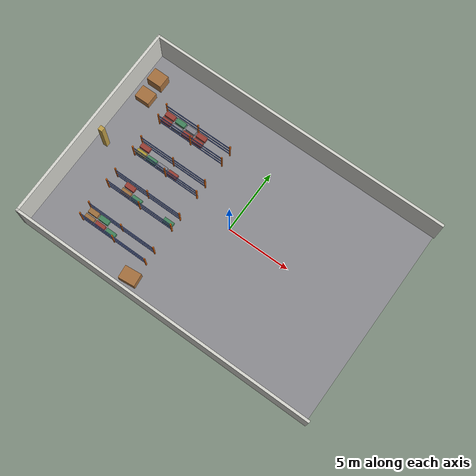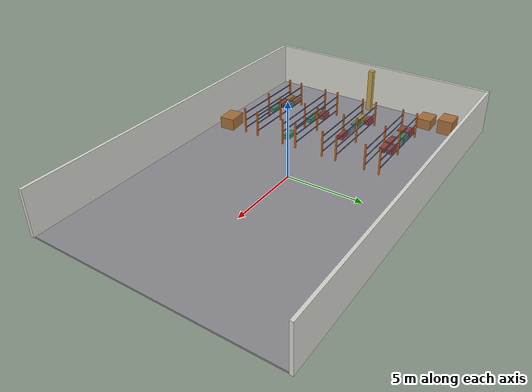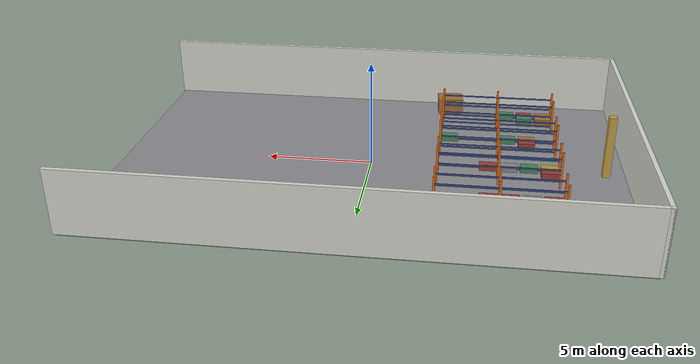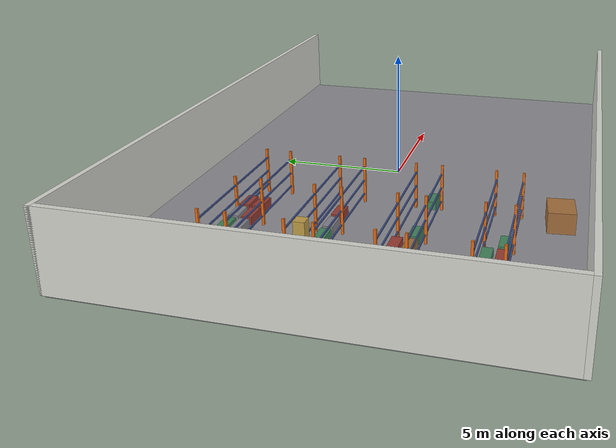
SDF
<sdf version="1.10">
 <world name="warehouse">
  <model name="warehouse_building">
   <static>true</static>
   <link name="floor">
    <pose>0 0 -0.05 0 0 0</pose>
    <collision name="collision">
     <geometry><box><size>24 16 0.1</size></box></geometry>
     <surface><friction><ode><mu>1.0</mu><mu2>1.0</mu2></ode></friction></surface>
    </collision>
    <visual name="visual">
     <geometry><box><size>24 16 0.1</size></box></geometry>
     <material>
      <ambient>0.45 0.45 0.47 1</ambient>
      <diffuse>0.55 0.55 0.57 1</diffuse>
      <specular>0.1 0.1 0.1 1</specular>
     </material>
    </visual>
   </link>
   <link name="wall_north">
    <pose>0 8 1.5 0 0 0</pose>
    <collision name="collision"><geometry><box><size>24.2 0.2 3</size></box></geometry></collision>
    <visual name="visual">
     <geometry><box><size>24.2 0.2 3</size></box></geometry>
     <material><ambient>0.7 0.7 0.68 1</ambient><diffuse>0.85 0.85 0.82 1</diffuse></material>
    </visual>
   </link>
   <link name="wall_south">
    <pose>0 -8 1.5 0 0 0</pose>
    <collision name="collision"><geometry><box><size>24.2 0.2 3</size></box></geometry></collision>
    <visual name="visual">
     <geometry><box><size>24.2 0.2 3</size></box></geometry>
     <material><ambient>0.7 0.7 0.68 1</ambient><diffuse>0.85 0.85 0.82 1</diffuse></material>
    </visual>
   </link>
   <link name="wall_west">
    <pose>-12 0 1.5 0 0 0</pose>
    <collision name="collision"><geometry><box><size>0.2 16.2 3</size></box></geometry></collision>
    <visual name="visual">
     <geometry><box><size>0.2 16.2 3</size></box></geometry>
     <material><ambient>0.7 0.7 0.68 1</ambient><diffuse>0.85 0.85 0.82 1</diffuse></material>
    </visual>
   </link>
   <link name="rack_r0_b0">
    <pose>-6 -5 1.25 0 0 0</pose>
    <collision name="upright_n0_collision">
     <pose>-2.796 0.495 -0.350 0 0 0</pose>
     <geometry><box><size>0.09 0.09 1.8</size></box></geometry>
    </collision>
    <visual name="upright_n0_visual">
     <pose>-2.796 0.495 -0.350 0 0 0</pose>
     <geometry><box><size>0.09 0.09 1.8</size></box></geometry>
     <material><ambient>0.55 0.25 0.05 1</ambient><diffuse>0.90 0.42 0.08 1</diffuse></material>
    </visual>
    <collision name="upright_n1_collision">
     <pose>0 0.495 -0.350 0 0 0</pose>
     <geometry><box><size>0.09 0.09 1.8</size></box></geometry>
    </collision>
    <visual name="upright_n1_visual">
     <pose>0 0.495 -0.350 0 0 0</pose>
     <geometry><box><size>0.09 0.09 1.8</size></box></geometry>
     <material><ambient>0.55 0.25 0.05 1</ambient><diffuse>0.90 0.42 0.08 1</diffuse></material>
    </visual>
    <collision name="upright_n2_collision">
     <pose>2.796 0.495 -0.350 0 0 0</pose>
     <geometry><box><size>0.09 0.09 1.8</size></box></geometry>
    </collision>
    <visual name="upright_n2_visual">
     <pose>2.796 0.495 -0.350 0 0 0</pose>
     <geometry><box><size>0.09 0.09 1.8</size></box></geometry>
     <material><ambient>0.55 0.25 0.05 1</ambient><diffuse>0.90 0.42 0.08 1</diffuse></material>
    </visual>
    <collision name="beam_n0_l0_collision">
     <pose>-1.398 0.475 -0.900 0 0 0</pose>
     <geometry><box><size>2.706 0.05 0.06</size></box></geometry>
    </collision>
    <visual name="beam_n0_l0_visual">
     <pose>-1.398 0.475 -0.900 0 0 0</pose>
     <geometry><box><size>2.706 0.05 0.06</size></box></geometry>
     <material><ambient>0.15 0.18 0.30 1</ambient><diffuse>0.25 0.32 0.55 1</diffuse></material>
    </visual>
    <collision name="beam_n0_l1_collision">
     <pose>-1.398 0.475 -0.350 0 0 0</pose>
     <geometry><box><size>2.706 0.05 0.06</size></box></geometry>
    </collision>
    <visual name="beam_n0_l1_visual">
     <pose>-1.398 0.475 -0.350 0 0 0</pose>
     <geometry><box><size>2.706 0.05 0.06</size></box></geometry>
     <material><ambient>0.15 0.18 0.30 1</ambient><diffuse>0.25 0.32 0.55 1</diffuse></material>
    </visual>
    <collision name="beam_n0_l2_collision">
     <pose>-1.398 0.475 0.200 0 0 0</pose>
     <geometry><box><size>2.706 0.05 0.06</size></box></geometry>
    </collision>
    <visual name="beam_n0_l2_visual">
     <pose>-1.398 0.475 0.200 0 0 0</pose>
     <geometry><box><size>2.706 0.05 0.06</size></box></geometry>
     <material><ambient>0.15 0.18 0.30 1</ambient><diffuse>0.25 0.32 0.55 1</diffuse></material>
    </visual>
    <collision name="beam_n1_l0_collision">
     <pose>1.398 0.475 -0.900 0 0 0</pose>
     <geometry><box><size>2.706 0.05 0.06</size></box></geometry>
    </collision>
    <visual name="beam_n1_l0_visual">
     <pose>1.398 0.475 -0.900 0 0 0</pose>
     <geometry><box><size>2.706 0.05 0.06</size></box></geometry>
     <material><ambient>0.15 0.18 0.30 1</ambient><diffuse>0.25 0.32 0.55 1</diffuse></material>
    </visual>
    <collision name="beam_n1_l1_collision">
     <pose>1.398 0.475 -0.350 0 0 0</pose>
     <geometry><box><size>2.706 0.05 0.06</size></box></geometry>
    </collision>
    <visual name="beam_n1_l1_visual">
     <pose>1.398 0.475 -0.350 0 0 0</pose>
     <geometry><box><size>2.706 0.05 0.06</size></box></geometry>
     <material><ambient>0.15 0.18 0.30 1</ambient><diffuse>0.25 0.32 0.55 1</diffuse></material>
    </visual>
    <collision name="beam_n1_l2_collision">
     <pose>1.398 0.475 0.200 0 0 0</pose>
     <geometry><box><size>2.706 0.05 0.06</size></box></geometry>
    </collision>
    <visual name="beam_n1_l2_visual">
     <pose>1.398 0.475 0.200 0 0 0</pose>
     <geometry><box><size>2.706 0.05 0.06</size></box></geometry>
     <material><ambient>0.15 0.18 0.30 1</ambient><diffuse>0.25 0.32 0.55 1</diffuse></material>
    </visual>
    <collision name="item_n0_l0_s0_collision">
     <pose>-2.33 0.250 -0.720 0 0 0</pose>
     <geometry><box><size>0.8 0.38 0.3</size></box></geometry>
    </collision>
    <visual name="item_n0_l0_s0_visual">
     <pose>-2.33 0.250 -0.720 0 0 0</pose>
     <geometry><box><size>0.8 0.38 0.3</size></box></geometry>
     <material><ambient>0.38 0.26 0.13 1</ambient><diffuse>0.62 0.44 0.24 1</diffuse></material>
    </visual>
    <collision name="item_n0_l0_s1_collision">
     <pose>-1.398 0.250 -0.720 0 0 0</pose>
     <geometry><box><size>0.8 0.38 0.3</size></box></geometry>
    </collision>
    <visual name="item_n0_l0_s1_visual">
     <pose>-1.398 0.250 -0.720 0 0 0</pose>
     <geometry><box><size>0.8 0.38 0.3</size></box></geometry>
     <material><ambient>0.14 0.28 0.20 1</ambient><diffuse>0.26 0.52 0.36 1</diffuse></material>
    </visual>
    <collision name="upright_s0_collision">
     <pose>-2.796 -0.495 -0.350 0 0 0</pose>
     <geometry><box><size>0.09 0.09 1.8</size></box></geometry>
    </collision>
    <visual name="upright_s0_visual">
     <pose>-2.796 -0.495 -0.350 0 0 0</pose>
     <geometry><box><size>0.09 0.09 1.8</size></box></geometry>
     <material><ambient>0.55 0.25 0.05 1</ambient><diffuse>0.90 0.42 0.08 1</diffuse></material>
    </visual>
    <collision name="upright_s1_collision">
     <pose>0 -0.495 -0.350 0 0 0</pose>
     <geometry><box><size>0.09 0.09 1.8</size></box></geometry>
    </collision>
    <visual name="upright_s1_visual">
     <pose>0 -0.495 -0.350 0 0 0</pose>
     <geometry><box><size>0.09 0.09 1.8</size></box></geometry>
     <material><ambient>0.55 0.25 0.05 1</ambient><diffuse>0.90 0.42 0.08 1</diffuse></material>
    </visual>
    <collision name="upright_s2_collision">
     <pose>2.796 -0.495 -0.350 0 0 0</pose>
     <geometry><box><size>0.09 0.09 1.8</size></box></geometry>
    </collision>
    <visual name="upright_s2_visual">
     <pose>2.796 -0.495 -0.350 0 0 0</pose>
     <geometry><box><size>0.09 0.09 1.8</size></box></geometry>
     <material><ambient>0.55 0.25 0.05 1</ambient><diffuse>0.90 0.42 0.08 1</diffuse></material>
    </visual>
    <collision name="beam_s0_l0_collision">
     <pose>-1.398 -0.475 -0.900 0 0 0</pose>
     <geometry><box><size>2.706 0.05 0.06</size></box></geometry>
    </collision>
    <visual name="beam_s0_l0_visual">
     <pose>-1.398 -0.475 -0.900 0 0 0</pose>
     <geometry><box><size>2.706 0.05 0.06</size></box></geometry>
     <material><ambient>0.15 0.18 0.30 1</ambient><diffuse>0.25 0.32 0.55 1</diffuse></material>
    </visual>
    <collision name="beam_s0_l1_collision">
     <pose>-1.398 -0.475 -0.350 0 0 0</pose>
     <geometry><box><size>2.706 0.05 0.06</size></box></geometry>
    </collision>
    <visual name="beam_s0_l1_visual">
     <pose>-1.398 -0.475 -0.350 0 0 0</pose>
     <geometry><box><size>2.706 0.05 0.06</size></box></geometry>
     <material><ambient>0.15 0.18 0.30 1</ambient><diffuse>0.25 0.32 0.55 1</diffuse></material>
    </visual>
    <collision name="beam_s0_l2_collision">
     <pose>-1.398 -0.475 0.200 0 0 0</pose>
     <geometry><box><size>2.706 0.05 0.06</size></box></geometry>
    </collision>
    <visual name="beam_s0_l2_visual">
     <pose>-1.398 -0.475 0.200 0 0 0</pose>
     <geometry><box><size>2.706 0.05 0.06</size></box></geometry>
     <material><ambient>0.15 0.18 0.30 1</ambient><diffuse>0.25 0.32 0.55 1</diffuse></material>
    </visual>
    <collision name="beam_s1_l0_collision">
     <pose>1.398 -0.475 -0.900 0 0 0</pose>
     <geometry><box><size>2.706 0.05 0.06</size></box></geometry>
    </collision>
    <visual name="beam_s1_l0_visual">
     <pose>1.398 -0.475 -0.900 0 0 0</pose>
     <geometry><box><size>2.706 0.05 0.06</size></box></geometry>
     <material><ambient>0.15 0.18 0.30 1</ambient><diffuse>0.25 0.32 0.55 1</diffuse></material>
    </visual>
    <collision name="beam_s1_l1_collision">
     <pose>1.398 -0.475 -0.350 0 0 0</pose>
     <geometry><box><size>2.706 0.05 0.06</size></box></geometry>
    </collision>
    <visual name="beam_s1_l1_visual">
     <pose>1.398 -0.475 -0.350 0 0 0</pose>
     <geometry><box><size>2.706 0.05 0.06</size></box></geometry>
     <material><ambient>0.15 0.18 0.30 1</ambient><diffuse>0.25 0.32 0.55 1</diffuse></material>
    </visual>
    <collision name="beam_s1_l2_collision">
     <pose>1.398 -0.475 0.200 0 0 0</pose>
     <geometry><box><size>2.706 0.05 0.06</size></box></geometry>
    </collision>
    <visual name="beam_s1_l2_visual">
     <pose>1.398 -0.475 0.200 0 0 0</pose>
     <geometry><box><size>2.706 0.05 0.06</size></box></geometry>
     <material><ambient>0.15 0.18 0.30 1</ambient><diffuse>0.25 0.32 0.55 1</diffuse></material>
    </visual>
    <collision name="item_s0_l0_s0_collision">
     <pose>-2.33 -0.250 -0.720 0 0 0</pose>
     <geometry><box><size>0.8 0.38 0.3</size></box></geometry>
    </collision>
    <visual name="item_s0_l0_s0_visual">
     <pose>-2.33 -0.250 -0.720 0 0 0</pose>
     <geometry><box><size>0.8 0.38 0.3</size></box></geometry>
     <material><ambient>0.38 0.26 0.13 1</ambient><diffuse>0.62 0.44 0.24 1</diffuse></material>
    </visual>
    <collision name="item_s0_l0_s2_collision">
     <pose>-0.466 -0.250 -0.720 0 0 0</pose>
     <geometry><box><size>0.8 0.38 0.3</size></box></geometry>
    </collision>
    <visual name="item_s0_l0_s2_visual">
     <pose>-0.466 -0.250 -0.720 0 0 0</pose>
     <geometry><box><size>0.8 0.38 0.3</size></box></geometry>
     <material><ambient>0.14 0.28 0.20 1</ambient><diffuse>0.26 0.52 0.36 1</diffuse></material>
    </visual>
    <collision name="item_s0_l0_s1_collision">
     <pose>-1.398 -0.250 -0.720 0 0 0</pose>
     <geometry><box><size>0.8 0.38 0.3</size></box></geometry>
    </collision>
    <visual name="item_s0_l0_s1_visual">
     <pose>-1.398 -0.250 -0.720 0 0 0</pose>
     <geometry><box><size>0.8 0.38 0.3</size></box></geometry>
     <material><ambient>0.30 0.12 0.12 1</ambient><diffuse>0.60 0.24 0.20 1</diffuse></material>
    </visual>
   </link>
   <link name="rack_r1_b0">
    <pose>-6 -2 1.25 0 0 0</pose>
    <collision name="upright_n0_collision">
     <pose>-2.796 0.495 -0.350 0 0 0</pose>
     <geometry><box><size>0.09 0.09 1.8</size></box></geometry>
    </collision>
    <visual name="upright_n0_visual">
     <pose>-2.796 0.495 -0.350 0 0 0</pose>
     <geometry><box><size>0.09 0.09 1.8</size></box></geometry>
     <material><ambient>0.55 0.25 0.05 1</ambient><diffuse>0.90 0.42 0.08 1</diffuse></material>
    </visual>
    <collision name="upright_n1_collision">
     <pose>0 0.495 -0.350 0 0 0</pose>
     <geometry><box><size>0.09 0.09 1.8</size></box></geometry>
    </collision>
    <visual name="upright_n1_visual">
     <pose>0 0.495 -0.350 0 0 0</pose>
     <geometry><box><size>0.09 0.09 1.8</size></box></geometry>
     <material><ambient>0.55 0.25 0.05 1</ambient><diffuse>0.90 0.42 0.08 1</diffuse></material>
    </visual>
    <collision name="upright_n2_collision">
     <pose>2.796 0.495 -0.350 0 0 0</pose>
     <geometry><box><size>0.09 0.09 1.8</size></box></geometry>
    </collision>
    <visual name="upright_n2_visual">
     <pose>2.796 0.495 -0.350 0 0 0</pose>
     <geometry><box><size>0.09 0.09 1.8</size></box></geometry>
     <material><ambient>0.55 0.25 0.05 1</ambient><diffuse>0.90 0.42 0.08 1</diffuse></material>
    </visual>
    <collision name="beam_n0_l0_collision">
     <pose>-1.398 0.475 -0.900 0 0 0</pose>
     <geometry><box><size>2.706 0.05 0.06</size></box></geometry>
    </collision>
    <visual name="beam_n0_l0_visual">
     <pose>-1.398 0.475 -0.900 0 0 0</pose>
     <geometry><box><size>2.706 0.05 0.06</size></box></geometry>
     <material><ambient>0.15 0.18 0.30 1</ambient><diffuse>0.25 0.32 0.55 1</diffuse></material>
    </visual>
    <collision name="beam_n0_l1_collision">
     <pose>-1.398 0.475 -0.350 0 0 0</pose>
     <geometry><box><size>2.706 0.05 0.06</size></box></geometry>
    </collision>
    <visual name="beam_n0_l1_visual">
     <pose>-1.398 0.475 -0.350 0 0 0</pose>
     <geometry><box><size>2.706 0.05 0.06</size></box></geometry>
     <material><ambient>0.15 0.18 0.30 1</ambient><diffuse>0.25 0.32 0.55 1</diffuse></material>
    </visual>
    <collision name="beam_n0_l2_collision">
     <pose>-1.398 0.475 0.200 0 0 0</pose>
     <geometry><box><size>2.706 0.05 0.06</size></box></geometry>
    </collision>
    <visual name="beam_n0_l2_visual">
     <pose>-1.398 0.475 0.200 0 0 0</pose>
     <geometry><box><size>2.706 0.05 0.06</size></box></geometry>
     <material><ambient>0.15 0.18 0.30 1</ambient><diffuse>0.25 0.32 0.55 1</diffuse></material>
    </visual>
    <collision name="beam_n1_l0_collision">
     <pose>1.398 0.475 -0.900 0 0 0</pose>
     <geometry><box><size>2.706 0.05 0.06</size></box></geometry>
    </collision>
    <visual name="beam_n1_l0_visual">
     <pose>1.398 0.475 -0.900 0 0 0</pose>
     <geometry><box><size>2.706 0.05 0.06</size></box></geometry>
     <material><ambient>0.15 0.18 0.30 1</ambient><diffuse>0.25 0.32 0.55 1</diffuse></material>
    </visual>
    <collision name="beam_n1_l1_collision">
     <pose>1.398 0.475 -0.350 0 0 0</pose>
     <geometry><box><size>2.706 0.05 0.06</size></box></geometry>
    </collision>
    <visual name="beam_n1_l1_visual">
     <pose>1.398 0.475 -0.350 0 0 0</pose>
     <geometry><box><size>2.706 0.05 0.06</size></box></geometry>
     <material><ambient>0.15 0.18 0.30 1</ambient><diffuse>0.25 0.32 0.55 1</diffuse></material>
    </visual>
    <collision name="beam_n1_l2_collision">
     <pose>1.398 0.475 0.200 0 0 0</pose>
     <geometry><box><size>2.706 0.05 0.06</size></box></geometry>
    </collision>
    <visual name="beam_n1_l2_visual">
     <pose>1.398 0.475 0.200 0 0 0</pose>
     <geometry><box><size>2.706 0.05 0.06</size></box></geometry>
     <material><ambient>0.15 0.18 0.30 1</ambient><diffuse>0.25 0.32 0.55 1</diffuse></material>
    </visual>
    <collision name="item_n0_l0_s1_collision">
     <pose>-1.398 0.250 -0.720 0 0 0</pose>
     <geometry><box><size>0.8 0.38 0.3</size></box></geometry>
    </collision>
    <visual name="item_n0_l0_s1_visual">
     <pose>-1.398 0.250 -0.720 0 0 0</pose>
     <geometry><box><size>0.8 0.38 0.3</size></box></geometry>
     <material><ambient>0.30 0.12 0.12 1</ambient><diffuse>0.60 0.24 0.20 1</diffuse></material>
    </visual>
    <collision name="upright_s0_collision">
     <pose>-2.796 -0.495 -0.350 0 0 0</pose>
     <geometry><box><size>0.09 0.09 1.8</size></box></geometry>
    </collision>
    <visual name="upright_s0_visual">
     <pose>-2.796 -0.495 -0.350 0 0 0</pose>
     <geometry><box><size>0.09 0.09 1.8</size></box></geometry>
     <material><ambient>0.55 0.25 0.05 1</ambient><diffuse>0.90 0.42 0.08 1</diffuse></material>
    </visual>
    <collision name="upright_s1_collision">
     <pose>0 -0.495 -0.350 0 0 0</pose>
     <geometry><box><size>0.09 0.09 1.8</size></box></geometry>
    </collision>
    <visual name="upright_s1_visual">
     <pose>0 -0.495 -0.350 0 0 0</pose>
     <geometry><box><size>0.09 0.09 1.8</size></box></geometry>
     <material><ambient>0.55 0.25 0.05 1</ambient><diffuse>0.90 0.42 0.08 1</diffuse></material>
    </visual>
    <collision name="upright_s2_collision">
     <pose>2.796 -0.495 -0.350 0 0 0</pose>
     <geometry><box><size>0.09 0.09 1.8</size></box></geometry>
    </collision>
    <visual name="upright_s2_visual">
     <pose>2.796 -0.495 -0.350 0 0 0</pose>
     <geometry><box><size>0.09 0.09 1.8</size></box></geometry>
     <material><ambient>0.55 0.25 0.05 1</ambient><diffuse>0.90 0.42 0.08 1</diffuse></material>
    </visual>
    <collision name="beam_s0_l0_collision">
     <pose>-1.398 -0.475 -0.900 0 0 0</pose>
     <geometry><box><size>2.706 0.05 0.06</size></box></geometry>
    </collision>
    <visual name="beam_s0_l0_visual">
     <pose>-1.398 -0.475 -0.900 0 0 0</pose>
     <geometry><box><size>2.706 0.05 0.06</size></box></geometry>
     <material><ambient>0.15 0.18 0.30 1</ambient><diffuse>0.25 0.32 0.55 1</diffuse></material>
    </visual>
    <collision name="beam_s0_l1_collision">
     <pose>-1.398 -0.475 -0.350 0 0 0</pose>
     <geometry><box><size>2.706 0.05 0.06</size></box></geometry>
    </collision>
    <visual name="beam_s0_l1_visual">
     <pose>-1.398 -0.475 -0.350 0 0 0</pose>
     <geometry><box><size>2.706 0.05 0.06</size></box></geometry>
     <material><ambient>0.15 0.18 0.30 1</ambient><diffuse>0.25 0.32 0.55 1</diffuse></material>
    </visual>
    <collision name="beam_s0_l2_collision">
     <pose>-1.398 -0.475 0.200 0 0 0</pose>
     <geometry><box><size>2.706 0.05 0.06</size></box></geometry>
    </collision>
    <visual name="beam_s0_l2_visual">
     <pose>-1.398 -0.475 0.200 0 0 0</pose>
     <geometry><box><size>2.706 0.05 0.06</size></box></geometry>
     <material><ambient>0.15 0.18 0.30 1</ambient><diffuse>0.25 0.32 0.55 1</diffuse></material>
    </visual>
    <collision name="beam_s1_l0_collision">
     <pose>1.398 -0.475 -0.900 0 0 0</pose>
     <geometry><box><size>2.706 0.05 0.06</size></box></geometry>
    </collision>
    <visual name="beam_s1_l0_visual">
     <pose>1.398 -0.475 -0.900 0 0 0</pose>
     <geometry><box><size>2.706 0.05 0.06</size></box></geometry>
     <material><ambient>0.15 0.18 0.30 1</ambient><diffuse>0.25 0.32 0.55 1</diffuse></material>
    </visual>
    <collision name="beam_s1_l1_collision">
     <pose>1.398 -0.475 -0.350 0 0 0</pose>
     <geometry><box><size>2.706 0.05 0.06</size></box></geometry>
    </collision>
    <visual name="beam_s1_l1_visual">
     <pose>1.398 -0.475 -0.350 0 0 0</pose>
     <geometry><box><size>2.706 0.05 0.06</size></box></geometry>
     <material><ambient>0.15 0.18 0.30 1</ambient><diffuse>0.25 0.32 0.55 1</diffuse></material>
    </visual>
    <collision name="beam_s1_l2_collision">
     <pose>1.398 -0.475 0.200 0 0 0</pose>
     <geometry><box><size>2.706 0.05 0.06</size></box></geometry>
    </collision>
    <visual name="beam_s1_l2_visual">
     <pose>1.398 -0.475 0.200 0 0 0</pose>
     <geometry><box><size>2.706 0.05 0.06</size></box></geometry>
     <material><ambient>0.15 0.18 0.30 1</ambient><diffuse>0.25 0.32 0.55 1</diffuse></material>
    </visual>
    <collision name="item_s0_l0_s1_collision">
     <pose>-1.398 -0.250 -0.720 0 0 0</pose>
     <geometry><box><size>0.8 0.38 0.3</size></box></geometry>
    </collision>
    <visual name="item_s0_l0_s1_visual">
     <pose>-1.398 -0.250 -0.720 0 0 0</pose>
     <geometry><box><size>0.8 0.38 0.3</size></box></geometry>
     <material><ambient>0.38 0.26 0.13 1</ambient><diffuse>0.62 0.44 0.24 1</diffuse></material>
    </visual>
    <collision name="item_s0_l0_s2_collision">
     <pose>-0.466 -0.250 -0.720 0 0 0</pose>
     <geometry><box><size>0.8 0.38 0.3</size></box></geometry>
    </collision>
    <visual name="item_s0_l0_s2_visual">
     <pose>-0.466 -0.250 -0.720 0 0 0</pose>
     <geometry><box><size>0.8 0.38 0.3</size></box></geometry>
     <material><ambient>0.14 0.28 0.20 1</ambient><diffuse>0.26 0.52 0.36 1</diffuse></material>
    </visual>
    <collision name="item_s1_l0_s2_collision">
     <pose>2.33 -0.250 -0.720 0 0 0</pose>
     <geometry><box><size>0.8 0.38 0.3</size></box></geometry>
    </collision>
    <visual name="item_s1_l0_s2_visual">
     <pose>2.33 -0.250 -0.720 0 0 0</pose>
     <geometry><box><size>0.8 0.38 0.3</size></box></geometry>
     <material><ambient>0.14 0.28 0.20 1</ambient><diffuse>0.26 0.52 0.36 1</diffuse></material>
    </visual>
   </link>
   <link name="rack_r2_b0">
    <pose>-6 1 1.25 0 0 0</pose>
    <collision name="upright_n0_collision">
     <pose>-2.796 0.495 -0.350 0 0 0</pose>
     <geometry><box><size>0.09 0.09 1.8</size></box></geometry>
    </collision>
    <visual name="upright_n0_visual">
     <pose>-2.796 0.495 -0.350 0 0 0</pose>
     <geometry><box><size>0.09 0.09 1.8</size></box></geometry>
     <material><ambient>0.55 0.25 0.05 1</ambient><diffuse>0.90 0.42 0.08 1</diffuse></material>
    </visual>
    <collision name="upright_n1_collision">
     <pose>0 0.495 -0.350 0 0 0</pose>
     <geometry><box><size>0.09 0.09 1.8</size></box></geometry>
    </collision>
    <visual name="upright_n1_visual">
     <pose>0 0.495 -0.350 0 0 0</pose>
     <geometry><box><size>0.09 0.09 1.8</size></box></geometry>
     <material><ambient>0.55 0.25 0.05 1</ambient><diffuse>0.90 0.42 0.08 1</diffuse></material>
    </visual>
    <collision name="upright_n2_collision">
     <pose>2.796 0.495 -0.350 0 0 0</pose>
     <geometry><box><size>0.09 0.09 1.8</size></box></geometry>
    </collision>
    <visual name="upright_n2_visual">
     <pose>2.796 0.495 -0.350 0 0 0</pose>
     <geometry><box><size>0.09 0.09 1.8</size></box></geometry>
     <material><ambient>0.55 0.25 0.05 1</ambient><diffuse>0.90 0.42 0.08 1</diffuse></material>
    </visual>
    <collision name="beam_n0_l0_collision">
     <pose>-1.398 0.475 -0.900 0 0 0</pose>
     <geometry><box><size>2.706 0.05 0.06</size></box></geometry>
    </collision>
    <visual name="beam_n0_l0_visual">
     <pose>-1.398 0.475 -0.900 0 0 0</pose>
     <geometry><box><size>2.706 0.05 0.06</size></box></geometry>
     <material><ambient>0.15 0.18 0.30 1</ambient><diffuse>0.25 0.32 0.55 1</diffuse></material>
    </visual>
    <collision name="beam_n0_l1_collision">
     <pose>-1.398 0.475 -0.350 0 0 0</pose>
     <geometry><box><size>2.706 0.05 0.06</size></box></geometry>
    </collision>
    <visual name="beam_n0_l1_visual">
     <pose>-1.398 0.475 -0.350 0 0 0</pose>
     <geometry><box><size>2.706 0.05 0.06</size></box></geometry>
     <material><ambient>0.15 0.18 0.30 1</ambient><diffuse>0.25 0.32 0.55 1</diffuse></material>
    </visual>
    <collision name="beam_n0_l2_collision">
     <pose>-1.398 0.475 0.200 0 0 0</pose>
     <geometry><box><size>2.706 0.05 0.06</size></box></geometry>
    </collision>
    <visual name="beam_n0_l2_visual">
     <pose>-1.398 0.475 0.200 0 0 0</pose>
     <geometry><box><size>2.706 0.05 0.06</size></box></geometry>
     <material><ambient>0.15 0.18 0.30 1</ambient><diffuse>0.25 0.32 0.55 1</diffuse></material>
    </visual>
    <collision name="beam_n1_l0_collision">
     <pose>1.398 0.475 -0.900 0 0 0</pose>
     <geometry><box><size>2.706 0.05 0.06</size></box></geometry>
    </collision>
    <visual name="beam_n1_l0_visual">
     <pose>1.398 0.475 -0.900 0 0 0</pose>
     <geometry><box><size>2.706 0.05 0.06</size></box></geometry>
     <material><ambient>0.15 0.18 0.30 1</ambient><diffuse>0.25 0.32 0.55 1</diffuse></material>
    </visual>
    <collision name="beam_n1_l1_collision">
     <pose>1.398 0.475 -0.350 0 0 0</pose>
     <geometry><box><size>2.706 0.05 0.06</size></box></geometry>
    </collision>
    <visual name="beam_n1_l1_visual">
     <pose>1.398 0.475 -0.350 0 0 0</pose>
     <geometry><box><size>2.706 0.05 0.06</size></box></geometry>
     <material><ambient>0.15 0.18 0.30 1</ambient><diffuse>0.25 0.32 0.55 1</diffuse></material>
    </visual>
    <collision name="beam_n1_l2_collision">
     <pose>1.398 0.475 0.200 0 0 0</pose>
     <geometry><box><size>2.706 0.05 0.06</size></box></geometry>
    </collision>
    <visual name="beam_n1_l2_visual">
     <pose>1.398 0.475 0.200 0 0 0</pose>
     <geometry><box><size>2.706 0.05 0.06</size></box></geometry>
     <material><ambient>0.15 0.18 0.30 1</ambient><diffuse>0.25 0.32 0.55 1</diffuse></material>
    </visual>
    <collision name="item_n0_l0_s0_collision">
     <pose>-2.33 0.250 -0.720 0 0 0</pose>
     <geometry><box><size>0.8 0.38 0.3</size></box></geometry>
    </collision>
    <visual name="item_n0_l0_s0_visual">
     <pose>-2.33 0.250 -0.720 0 0 0</pose>
     <geometry><box><size>0.8 0.38 0.3</size></box></geometry>
     <material><ambient>0.30 0.12 0.12 1</ambient><diffuse>0.60 0.24 0.20 1</diffuse></material>
    </visual>
    <collision name="upright_s0_collision">
     <pose>-2.796 -0.495 -0.350 0 0 0</pose>
     <geometry><box><size>0.09 0.09 1.8</size></box></geometry>
    </collision>
    <visual name="upright_s0_visual">
     <pose>-2.796 -0.495 -0.350 0 0 0</pose>
     <geometry><box><size>0.09 0.09 1.8</size></box></geometry>
     <material><ambient>0.55 0.25 0.05 1</ambient><diffuse>0.90 0.42 0.08 1</diffuse></material>
    </visual>
    <collision name="upright_s1_collision">
     <pose>0 -0.495 -0.350 0 0 0</pose>
     <geometry><box><size>0.09 0.09 1.8</size></box></geometry>
    </collision>
    <visual name="upright_s1_visual">
     <pose>0 -0.495 -0.350 0 0 0</pose>
     <geometry><box><size>0.09 0.09 1.8</size></box></geometry>
     <material><ambient>0.55 0.25 0.05 1</ambient><diffuse>0.90 0.42 0.08 1</diffuse></material>
    </visual>
    <collision name="upright_s2_collision">
     <pose>2.796 -0.495 -0.350 0 0 0</pose>
     <geometry><box><size>0.09 0.09 1.8</size></box></geometry>
    </collision>
    <visual name="upright_s2_visual">
     <pose>2.796 -0.495 -0.350 0 0 0</pose>
     <geometry><box><size>0.09 0.09 1.8</size></box></geometry>
     <material><ambient>0.55 0.25 0.05 1</ambient><diffuse>0.90 0.42 0.08 1</diffuse></material>
    </visual>
    <collision name="beam_s0_l0_collision">
     <pose>-1.398 -0.475 -0.900 0 0 0</pose>
     <geometry><box><size>2.706 0.05 0.06</size></box></geometry>
    </collision>
    <visual name="beam_s0_l0_visual">
     <pose>-1.398 -0.475 -0.900 0 0 0</pose>
     <geometry><box><size>2.706 0.05 0.06</size></box></geometry>
     <material><ambient>0.15 0.18 0.30 1</ambient><diffuse>0.25 0.32 0.55 1</diffuse></material>
    </visual>
    <collision name="beam_s0_l1_collision">
     <pose>-1.398 -0.475 -0.350 0 0 0</pose>
     <geometry><box><size>2.706 0.05 0.06</size></box></geometry>
    </collision>
    <visual name="beam_s0_l1_visual">
     <pose>-1.398 -0.475 -0.350 0 0 0</pose>
     <geometry><box><size>2.706 0.05 0.06</size></box></geometry>
     <material><ambient>0.15 0.18 0.30 1</ambient><diffuse>0.25 0.32 0.55 1</diffuse></material>
    </visual>
    <collision name="beam_s0_l2_collision">
     <pose>-1.398 -0.475 0.200 0 0 0</pose>
     <geometry><box><size>2.706 0.05 0.06</size></box></geometry>
    </collision>
    <visual name="beam_s0_l2_visual">
     <pose>-1.398 -0.475 0.200 0 0 0</pose>
     <geometry><box><size>2.706 0.05 0.06</size></box></geometry>
     <material><ambient>0.15 0.18 0.30 1</ambient><diffuse>0.25 0.32 0.55 1</diffuse></material>
    </visual>
    <collision name="beam_s1_l0_collision">
     <pose>1.398 -0.475 -0.900 0 0 0</pose>
     <geometry><box><size>2.706 0.05 0.06</size></box></geometry>
    </collision>
    <visual name="beam_s1_l0_visual">
     <pose>1.398 -0.475 -0.900 0 0 0</pose>
     <geometry><box><size>2.706 0.05 0.06</size></box></geometry>
     <material><ambient>0.15 0.18 0.30 1</ambient><diffuse>0.25 0.32 0.55 1</diffuse></material>
    </visual>
    <collision name="beam_s1_l1_collision">
     <pose>1.398 -0.475 -0.350 0 0 0</pose>
     <geometry><box><size>2.706 0.05 0.06</size></box></geometry>
    </collision>
    <visual name="beam_s1_l1_visual">
     <pose>1.398 -0.475 -0.350 0 0 0</pose>
     <geometry><box><size>2.706 0.05 0.06</size></box></geometry>
     <material><ambient>0.15 0.18 0.30 1</ambient><diffuse>0.25 0.32 0.55 1</diffuse></material>
    </visual>
    <collision name="beam_s1_l2_collision">
     <pose>1.398 -0.475 0.200 0 0 0</pose>
     <geometry><box><size>2.706 0.05 0.06</size></box></geometry>
    </collision>
    <visual name="beam_s1_l2_visual">
     <pose>1.398 -0.475 0.200 0 0 0</pose>
     <geometry><box><size>2.706 0.05 0.06</size></box></geometry>
     <material><ambient>0.15 0.18 0.30 1</ambient><diffuse>0.25 0.32 0.55 1</diffuse></material>
    </visual>
    <collision name="item_s0_l0_s2_collision">
     <pose>-0.466 -0.250 -0.720 0 0 0</pose>
     <geometry><box><size>0.8 0.38 0.3</size></box></geometry>
    </collision>
    <visual name="item_s0_l0_s2_visual">
     <pose>-0.466 -0.250 -0.720 0 0 0</pose>
     <geometry><box><size>0.8 0.38 0.3</size></box></geometry>
     <material><ambient>0.30 0.30 0.32 1</ambient><diffuse>0.52 0.52 0.55 1</diffuse></material>
    </visual>
    <collision name="item_s0_l0_s1_collision">
     <pose>-1.398 -0.250 -0.720 0 0 0</pose>
     <geometry><box><size>0.8 0.38 0.3</size></box></geometry>
    </collision>
    <visual name="item_s0_l0_s1_visual">
     <pose>-1.398 -0.250 -0.720 0 0 0</pose>
     <geometry><box><size>0.8 0.38 0.3</size></box></geometry>
     <material><ambient>0.14 0.28 0.20 1</ambient><diffuse>0.26 0.52 0.36 1</diffuse></material>
    </visual>
    <collision name="item_s0_l0_s0_collision">
     <pose>-2.33 -0.250 -0.720 0 0 0</pose>
     <geometry><box><size>0.8 0.38 0.3</size></box></geometry>
    </collision>
    <visual name="item_s0_l0_s0_visual">
     <pose>-2.33 -0.250 -0.720 0 0 0</pose>
     <geometry><box><size>0.8 0.38 0.3</size></box></geometry>
     <material><ambient>0.34 0.30 0.10 1</ambient><diffuse>0.68 0.60 0.20 1</diffuse></material>
    </visual>
    <collision name="item_s1_l0_s0_collision">
     <pose>0.466 -0.250 -0.720 0 0 0</pose>
     <geometry><box><size>0.8 0.38 0.3</size></box></geometry>
    </collision>
    <visual name="item_s1_l0_s0_visual">
     <pose>0.466 -0.250 -0.720 0 0 0</pose>
     <geometry><box><size>0.8 0.38 0.3</size></box></geometry>
     <material><ambient>0.30 0.12 0.12 1</ambient><diffuse>0.60 0.24 0.20 1</diffuse></material>
    </visual>
   </link>
   <link name="rack_r3_b0">
    <pose>-6 4 1.25 0 0 0</pose>
    <collision name="upright_n0_collision">
     <pose>-2.796 0.495 -0.350 0 0 0</pose>
     <geometry><box><size>0.09 0.09 1.8</size></box></geometry>
    </collision>
    <visual name="upright_n0_visual">
     <pose>-2.796 0.495 -0.350 0 0 0</pose>
     <geometry><box><size>0.09 0.09 1.8</size></box></geometry>
     <material><ambient>0.55 0.25 0.05 1</ambient><diffuse>0.90 0.42 0.08 1</diffuse></material>
    </visual>
    <collision name="upright_n1_collision">
     <pose>0 0.495 -0.350 0 0 0</pose>
     <geometry><box><size>0.09 0.09 1.8</size></box></geometry>
    </collision>
    <visual name="upright_n1_visual">
     <pose>0 0.495 -0.350 0 0 0</pose>
     <geometry><box><size>0.09 0.09 1.8</size></box></geometry>
     <material><ambient>0.55 0.25 0.05 1</ambient><diffuse>0.90 0.42 0.08 1</diffuse></material>
    </visual>
    <collision name="upright_n2_collision">
     <pose>2.796 0.495 -0.350 0 0 0</pose>
     <geometry><box><size>0.09 0.09 1.8</size></box></geometry>
    </collision>
    <visual name="upright_n2_visual">
     <pose>2.796 0.495 -0.350 0 0 0</pose>
     <geometry><box><size>0.09 0.09 1.8</size></box></geometry>
     <material><ambient>0.55 0.25 0.05 1</ambient><diffuse>0.90 0.42 0.08 1</diffuse></material>
    </visual>
    <collision name="beam_n0_l0_collision">
     <pose>-1.398 0.475 -0.900 0 0 0</pose>
     <geometry><box><size>2.706 0.05 0.06</size></box></geometry>
    </collision>
    <visual name="beam_n0_l0_visual">
     <pose>-1.398 0.475 -0.900 0 0 0</pose>
     <geometry><box><size>2.706 0.05 0.06</size></box></geometry>
     <material><ambient>0.15 0.18 0.30 1</ambient><diffuse>0.25 0.32 0.55 1</diffuse></material>
    </visual>
    <collision name="beam_n0_l1_collision">
     <pose>-1.398 0.475 -0.350 0 0 0</pose>
     <geometry><box><size>2.706 0.05 0.06</size></box></geometry>
    </collision>
    <visual name="beam_n0_l1_visual">
     <pose>-1.398 0.475 -0.350 0 0 0</pose>
     <geometry><box><size>2.706 0.05 0.06</size></box></geometry>
     <material><ambient>0.15 0.18 0.30 1</ambient><diffuse>0.25 0.32 0.55 1</diffuse></material>
    </visual>
    <collision name="beam_n0_l2_collision">
     <pose>-1.398 0.475 0.200 0 0 0</pose>
     <geometry><box><size>2.706 0.05 0.06</size></box></geometry>
    </collision>
    <visual name="beam_n0_l2_visual">
     <pose>-1.398 0.475 0.200 0 0 0</pose>
     <geometry><box><size>2.706 0.05 0.06</size></box></geometry>
     <material><ambient>0.15 0.18 0.30 1</ambient><diffuse>0.25 0.32 0.55 1</diffuse></material>
    </visual>
    <collision name="beam_n1_l0_collision">
     <pose>1.398 0.475 -0.900 0 0 0</pose>
     <geometry><box><size>2.706 0.05 0.06</size></box></geometry>
    </collision>
    <visual name="beam_n1_l0_visual">
     <pose>1.398 0.475 -0.900 0 0 0</pose>
     <geometry><box><size>2.706 0.05 0.06</size></box></geometry>
     <material><ambient>0.15 0.18 0.30 1</ambient><diffuse>0.25 0.32 0.55 1</diffuse></material>
    </visual>
    <collision name="beam_n1_l1_collision">
     <pose>1.398 0.475 -0.350 0 0 0</pose>
     <geometry><box><size>2.706 0.05 0.06</size></box></geometry>
    </collision>
    <visual name="beam_n1_l1_visual">
     <pose>1.398 0.475 -0.350 0 0 0</pose>
     <geometry><box><size>2.706 0.05 0.06</size></box></geometry>
     <material><ambient>0.15 0.18 0.30 1</ambient><diffuse>0.25 0.32 0.55 1</diffuse></material>
    </visual>
    <collision name="beam_n1_l2_collision">
     <pose>1.398 0.475 0.200 0 0 0</pose>
     <geometry><box><size>2.706 0.05 0.06</size></box></geometry>
    </collision>
    <visual name="beam_n1_l2_visual">
     <pose>1.398 0.475 0.200 0 0 0</pose>
     <geometry><box><size>2.706 0.05 0.06</size></box></geometry>
     <material><ambient>0.15 0.18 0.30 1</ambient><diffuse>0.25 0.32 0.55 1</diffuse></material>
    </visual>
    <collision name="item_n0_l0_s1_collision">
     <pose>-1.398 0.250 -0.720 0 0 0</pose>
     <geometry><box><size>0.8 0.38 0.3</size></box></geometry>
    </collision>
    <visual name="item_n0_l0_s1_visual">
     <pose>-1.398 0.250 -0.720 0 0 0</pose>
     <geometry><box><size>0.8 0.38 0.3</size></box></geometry>
     <material><ambient>0.14 0.28 0.20 1</ambient><diffuse>0.26 0.52 0.36 1</diffuse></material>
    </visual>
    <collision name="item_n0_l0_s2_collision">
     <pose>-0.466 0.250 -0.720 0 0 0</pose>
     <geometry><box><size>0.8 0.38 0.3</size></box></geometry>
    </collision>
    <visual name="item_n0_l0_s2_visual">
     <pose>-0.466 0.250 -0.720 0 0 0</pose>
     <geometry><box><size>0.8 0.38 0.3</size></box></geometry>
     <material><ambient>0.30 0.30 0.32 1</ambient><diffuse>0.52 0.52 0.55 1</diffuse></material>
    </visual>
    <collision name="item_n0_l0_s0_collision">
     <pose>-2.33 0.250 -0.720 0 0 0</pose>
     <geometry><box><size>0.8 0.38 0.3</size></box></geometry>
    </collision>
    <visual name="item_n0_l0_s0_visual">
     <pose>-2.33 0.250 -0.720 0 0 0</pose>
     <geometry><box><size>0.8 0.38 0.3</size></box></geometry>
     <material><ambient>0.30 0.12 0.12 1</ambient><diffuse>0.60 0.24 0.20 1</diffuse></material>
    </visual>
    <collision name="item_n1_l0_s0_collision">
     <pose>0.466 0.250 -0.720 0 0 0</pose>
     <geometry><box><size>0.8 0.38 0.3</size></box></geometry>
    </collision>
    <visual name="item_n1_l0_s0_visual">
     <pose>0.466 0.250 -0.720 0 0 0</pose>
     <geometry><box><size>0.8 0.38 0.3</size></box></geometry>
     <material><ambient>0.30 0.12 0.12 1</ambient><diffuse>0.60 0.24 0.20 1</diffuse></material>
    </visual>
    <collision name="upright_s0_collision">
     <pose>-2.796 -0.495 -0.350 0 0 0</pose>
     <geometry><box><size>0.09 0.09 1.8</size></box></geometry>
    </collision>
    <visual name="upright_s0_visual">
     <pose>-2.796 -0.495 -0.350 0 0 0</pose>
     <geometry><box><size>0.09 0.09 1.8</size></box></geometry>
     <material><ambient>0.55 0.25 0.05 1</ambient><diffuse>0.90 0.42 0.08 1</diffuse></material>
    </visual>
    <collision name="upright_s1_collision">
     <pose>0 -0.495 -0.350 0 0 0</pose>
     <geometry><box><size>0.09 0.09 1.8</size></box></geometry>
    </collision>
    <visual name="upright_s1_visual">
     <pose>0 -0.495 -0.350 0 0 0</pose>
     <geometry><box><size>0.09 0.09 1.8</size></box></geometry>
     <material><ambient>0.55 0.25 0.05 1</ambient><diffuse>0.90 0.42 0.08 1</diffuse></material>
    </visual>
    <collision name="upright_s2_collision">
     <pose>2.796 -0.495 -0.350 0 0 0</pose>
     <geometry><box><size>0.09 0.09 1.8</size></box></geometry>
    </collision>
    <visual name="upright_s2_visual">
     <pose>2.796 -0.495 -0.350 0 0 0</pose>
     <geometry><box><size>0.09 0.09 1.8</size></box></geometry>
     <material><ambient>0.55 0.25 0.05 1</ambient><diffuse>0.90 0.42 0.08 1</diffuse></material>
    </visual>
    <collision name="beam_s0_l0_collision">
     <pose>-1.398 -0.475 -0.900 0 0 0</pose>
     <geometry><box><size>2.706 0.05 0.06</size></box></geometry>
    </collision>
    <visual name="beam_s0_l0_visual">
     <pose>-1.398 -0.475 -0.900 0 0 0</pose>
     <geometry><box><size>2.706 0.05 0.06</size></box></geometry>
     <material><ambient>0.15 0.18 0.30 1</ambient><diffuse>0.25 0.32 0.55 1</diffuse></material>
    </visual>
    <collision name="beam_s0_l1_collision">
     <pose>-1.398 -0.475 -0.350 0 0 0</pose>
     <geometry><box><size>2.706 0.05 0.06</size></box></geometry>
    </collision>
    <visual name="beam_s0_l1_visual">
     <pose>-1.398 -0.475 -0.350 0 0 0</pose>
     <geometry><box><size>2.706 0.05 0.06</size></box></geometry>
     <material><ambient>0.15 0.18 0.30 1</ambient><diffuse>0.25 0.32 0.55 1</diffuse></material>
    </visual>
    <collision name="beam_s0_l2_collision">
     <pose>-1.398 -0.475 0.200 0 0 0</pose>
     <geometry><box><size>2.706 0.05 0.06</size></box></geometry>
    </collision>
    <visual name="beam_s0_l2_visual">
     <pose>-1.398 -0.475 0.200 0 0 0</pose>
     <geometry><box><size>2.706 0.05 0.06</size></box></geometry>
     <material><ambient>0.15 0.18 0.30 1</ambient><diffuse>0.25 0.32 0.55 1</diffuse></material>
    </visual>
    <collision name="beam_s1_l0_collision">
     <pose>1.398 -0.475 -0.900 0 0 0</pose>
     <geometry><box><size>2.706 0.05 0.06</size></box></geometry>
    </collision>
    <visual name="beam_s1_l0_visual">
     <pose>1.398 -0.475 -0.900 0 0 0</pose>
     <geometry><box><size>2.706 0.05 0.06</size></box></geometry>
     <material><ambient>0.15 0.18 0.30 1</ambient><diffuse>0.25 0.32 0.55 1</diffuse></material>
    </visual>
    <collision name="beam_s1_l1_collision">
     <pose>1.398 -0.475 -0.350 0 0 0</pose>
     <geometry><box><size>2.706 0.05 0.06</size></box></geometry>
    </collision>
    <visual name="beam_s1_l1_visual">
     <pose>1.398 -0.475 -0.350 0 0 0</pose>
     <geometry><box><size>2.706 0.05 0.06</size></box></geometry>
     <material><ambient>0.15 0.18 0.30 1</ambient><diffuse>0.25 0.32 0.55 1</diffuse></material>
    </visual>
    <collision name="beam_s1_l2_collision">
     <pose>1.398 -0.475 0.200 0 0 0</pose>
     <geometry><box><size>2.706 0.05 0.06</size></box></geometry>
    </collision>
    <visual name="beam_s1_l2_visual">
     <pose>1.398 -0.475 0.200 0 0 0</pose>
     <geometry><box><size>2.706 0.05 0.06</size></box></geometry>
     <material><ambient>0.15 0.18 0.30 1</ambient><diffuse>0.25 0.32 0.55 1</diffuse></material>
    </visual>
    <collision name="item_s0_l0_s0_collision">
     <pose>-2.33 -0.250 -0.720 0 0 0</pose>
     <geometry><box><size>0.8 0.38 0.3</size></box></geometry>
    </collision>
    <visual name="item_s0_l0_s0_visual">
     <pose>-2.33 -0.250 -0.720 0 0 0</pose>
     <geometry><box><size>0.8 0.38 0.3</size></box></geometry>
     <material><ambient>0.30 0.12 0.12 1</ambient><diffuse>0.60 0.24 0.20 1</diffuse></material>
    </visual>
    <collision name="item_s0_l0_s1_collision">
     <pose>-1.398 -0.250 -0.720 0 0 0</pose>
     <geometry><box><size>0.8 0.38 0.3</size></box></geometry>
    </collision>
    <visual name="item_s0_l0_s1_visual">
     <pose>-1.398 -0.250 -0.720 0 0 0</pose>
     <geometry><box><size>0.8 0.38 0.3</size></box></geometry>
     <material><ambient>0.30 0.30 0.32 1</ambient><diffuse>0.52 0.52 0.55 1</diffuse></material>
    </visual>
    <collision name="item_s0_l0_s2_collision">
     <pose>-0.466 -0.250 -0.720 0 0 0</pose>
     <geometry><box><size>0.8 0.38 0.3</size></box></geometry>
    </collision>
    <visual name="item_s0_l0_s2_visual">
     <pose>-0.466 -0.250 -0.720 0 0 0</pose>
     <geometry><box><size>0.8 0.38 0.3</size></box></geometry>
     <material><ambient>0.30 0.12 0.12 1</ambient><diffuse>0.60 0.24 0.20 1</diffuse></material>
    </visual>
    <collision name="item_s1_l0_s0_collision">
     <pose>0.466 -0.250 -0.720 0 0 0</pose>
     <geometry><box><size>0.8 0.38 0.3</size></box></geometry>
    </collision>
    <visual name="item_s1_l0_s0_visual">
     <pose>0.466 -0.250 -0.720 0 0 0</pose>
     <geometry><box><size>0.8 0.38 0.3</size></box></geometry>
     <material><ambient>0.30 0.12 0.12 1</ambient><diffuse>0.60 0.24 0.20 1</diffuse></material>
    </visual>
   </link>
   <link name="pillar_2">
    <pose>-11 0 1.5 0 0 0</pose>
    <collision name="collision"><geometry><box><size>0.35 0.35 3</size></box></geometry></collision>
    <visual name="visual">
     <geometry><box><size>0.35 0.35 3</size></box></geometry>
     <material><ambient>0.5 0.42 0.2 1</ambient><diffuse>0.75 0.62 0.28 1</diffuse></material>
    </visual>
   </link>
   <link name="crate_0">
    <pose>-10.8 6.0 0.5 0 0 0</pose>
    <collision name="collision"><geometry><box><size>1.2 1.0 1.0</size></box></geometry></collision>
    <visual name="visual">
     <geometry><box><size>1.2 1.0 1.0</size></box></geometry>
     <material><ambient>0.45 0.30 0.16 1</ambient><diffuse>0.65 0.44 0.24 1</diffuse></material>
    </visual>
   </link>
   <link name="crate_1">
    <pose>-10.8 4.5 0.35 0 0 0</pose>
    <collision name="collision"><geometry><box><size>1.2 1.0 0.7</size></box></geometry></collision>
    <visual name="visual">
     <geometry><box><size>1.2 1.0 0.7</size></box></geometry>
     <material><ambient>0.45 0.30 0.16 1</ambient><diffuse>0.65 0.44 0.24 1</diffuse></material>
    </visual>
   </link>
   <link name="crate_4">
    <pose>-3.5 -6.9 0.4 0 0 0.1</pose>
    <collision name="collision"><geometry><box><size>1.3 1.0 0.8</size></box></geometry></collision>
    <visual name="visual">
     <geometry><box><size>1.3 1.0 0.8</size></box></geometry>
     <material><ambient>0.45 0.30 0.16 1</ambient><diffuse>0.65 0.44 0.24 1</diffuse></material>
    </visual>
   </link>
  </model>
 </world>
</sdf>
